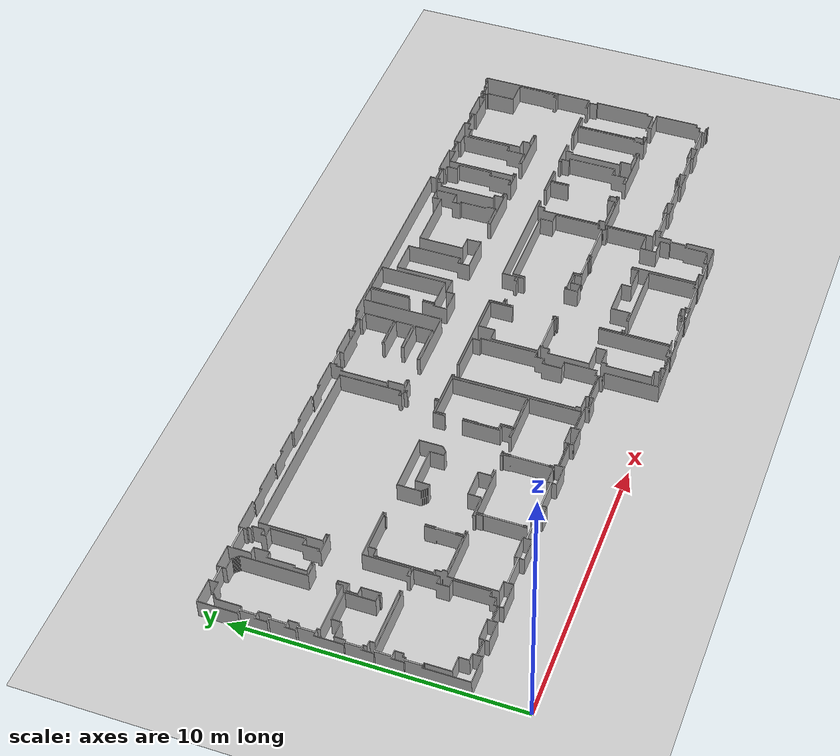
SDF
<sdf version='1.4'>
  <world name='default'>
    <!-- A global light source -->
    <include>
      <uri>model://sun</uri>
      <pose>13.575 5.5375 1000.0 0 0 0</pose>
    </include>

    <!-- A ground plane -->
    <include>
      <uri>model://ground_plane</uri>
    </include>

    <physics type="ode">
      <real_time_update_rate>1000.0</real_time_update_rate>
      <max_step_size>0.001</max_step_size>
      <real_time_factor>1</real_time_factor>
      <ode>
        <solver>
          <type>quick</type>
          <iters>150</iters>
          <precon_iters>0</precon_iters>
          <sor>1.400000</sor>
          <use_dynamic_moi_rescaling>1</use_dynamic_moi_rescaling>
        </solver>
        <constraints>
          <cfm>0.00001</cfm>
          <erp>0.2</erp>
          <contact_max_correcting_vel>2000.000000</contact_max_correcting_vel>
          <contact_surface_layer>0.01000</contact_surface_layer>
        </constraints>
      </ode>
    </physics>

    <!-- Load world -->
    <include>
      <uri>model://building</uri>
      <pose>2.0 1.5 0 0 0 0</pose>
    </include>

    <scene>
      <ambient>0.4 0.4 0.4 1</ambient>
      <background>0.7 0.7 0.7 1</background>
      <shadows>true</shadows>
    </scene>

    <gui fullscreen='0'>
      <camera name='user_camera'>
        <pose>13.575 5.5375 25.0 -1.570796 1.570796 0</pose>
        <view_controller>orbit</view_controller>
      </camera>
    </gui>
  </world>
</sdf>

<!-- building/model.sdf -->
<sdf version="1.4">
  <model name="building">
    <link name="link">
      <inertial>
        <mass>15</mass>
        <inertia>
          <ixx>0.0</ixx>
          <ixy>0.0</ixy>
          <ixz>0.0</ixz>
          <iyy>0.0</iyy>
          <iyz>0.0</iyz>
          <izz>0.0</izz>
        </inertia>
      </inertial>
      <collision name="collision">
        <pose>0 0 0 0 0 0</pose>
        <geometry>
          <mesh>
            <uri>model://building/meshes/building.stl</uri>
          </mesh>
        </geometry>
      </collision>
      <visual name="visual">
        <pose>0 0 0 0 0 0</pose>
        <geometry>
          <mesh>
            <uri>model://building/meshes/building.stl</uri>
          </mesh>
        </geometry>
      </visual>
    </link>
    <static>1</static>
  </model>
</sdf>
